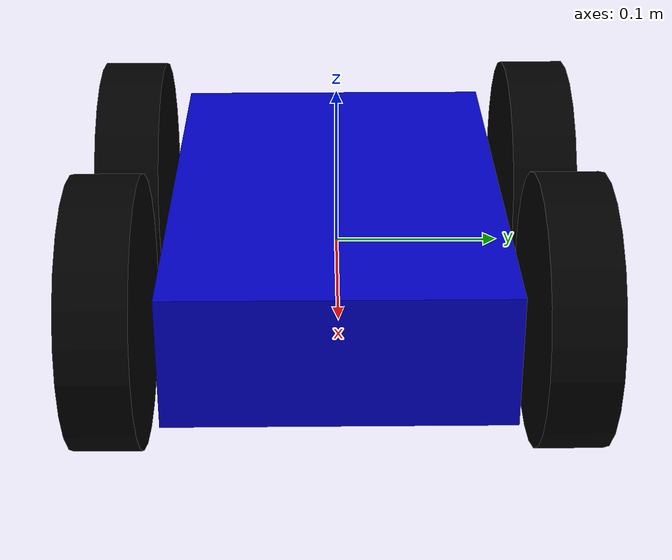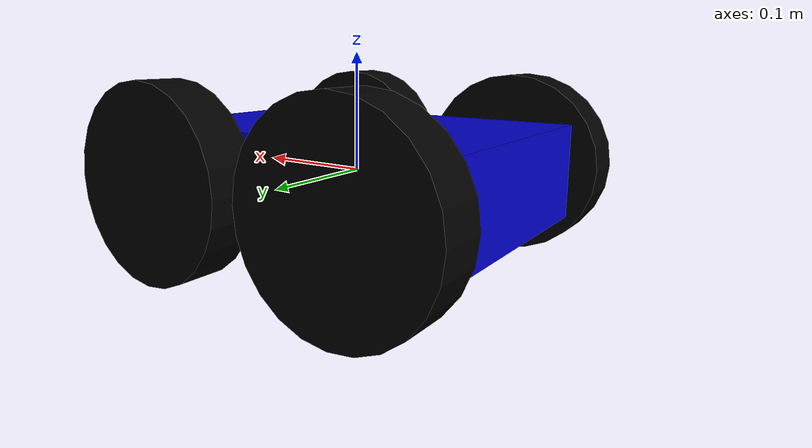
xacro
<?xml version="1.0"?>
<robot name="armbot" xmlns:xacro="http://ros.org/wiki/xacro">

  <xacro:property name="wheel_radius" value="0.08" />
  <xacro:property name="wheel_thickness" value="0.04" />
  <xacro:property name="chesis_length" value="0.3" />
  <xacro:property name="chesis_breadth" value="0.2" />
  <xacro:property name="chesis_height" value="0.08" />

  <material name="blue">
    <color rgba="0 0 0.8 1"/>
  </material>

  <material name="black">
    <color rgba="0 0 0 1"/>
  </material>

  <material name="white">
    <color rgba="1 1 1 1"/>
  </material>

  <xacro:macro name="box_inertia" params="mass x y z">
    <inertial>
      <mass value="${mass}" />
      <inertia ixx="${(1/12)*mass*(y*y+z*z)}" ixy="0.0" ixz="0.0" iyy="${(1/12)*mass*(x*x+z*z)}" iyz="0.0" izz="${(1/12)*mass*(y*y+x*x)}" />
    </inertial>
  </xacro:macro>

  <xacro:macro name="cyl_inertia" params="mass r h">
    <inertial>
      <mass value="${mass}" />
      <inertia ixx="${(1/12)*mass*(3*r*r+h*h)}" ixy="0.0" ixz="0.0" iyy="${(1/12)*mass*(3*r*r+h*h)}" iyz="0.0" izz="${(1/2)*mass*r*r}" />
    </inertial>
  </xacro:macro>

  <link name="base_link"></link>

  <link name="chesis">
    <visual>
      <geometry>
        <box size="${chesis_length} ${chesis_breadth} ${chesis_height}"/>
      </geometry>
      <material name="blue"/>
    </visual>
    <collision>
      <geometry>
        <box size="${chesis_length} ${chesis_breadth} ${chesis_height}"/>
      </geometry>
    </collision>
    <xacro:box_inertia mass="0.5" x="${chesis_length}" y="${chesis_breadth}" z="${chesis_height}"/>
  </link>

  <gazebo reference="chesis">
       <material>Gazebo/Blue</material>
    </gazebo>

  <joint name="fixed_joint" type="fixed">
      <parent link="base_link"/>
      <child link="chesis"/>
  </joint>

  <xacro:macro name="wheel" params="prefix suffix posx posy">
    <link name="${prefix}_${suffix}_wheel">
      <visual>
        <origin xyz="0 0 0" rpy="${pi/2} 0 0" />
        <geometry>
          <cylinder radius="${wheel_radius}" length="${wheel_thickness}"/>
        </geometry>
        <material name="black"/>
      </visual>
      <collision>
        <origin xyz="0 0 0" rpy="${pi/2} 0 0" />
        <geometry>
          <cylinder radius="${wheel_radius}" length="${wheel_thickness}"/>
        </geometry>
      </collision>
      <xacro:cyl_inertia mass="0.1" r="${wheel_radius}" h="${wheel_thickness}"/>
    </link>
    <joint name="${prefix}_${suffix}_wheel_joint" type="continuous">
      <axis xyz="0 1 0" rpy="0 0 0" />
      <parent link="chesis"/>
      <child link="${prefix}_${suffix}_wheel"/>
      <origin xyz="${(chesis_length*0.3)*posx} ${(chesis_breadth/2+wheel_thickness/2)*1.1*posy} 0" rpy="0 0 0"/>
      <dynamics damping="0"/>
    </joint>

    <gazebo reference="${prefix}_${suffix}_wheel">
       <material>Gazebo/DarkGray</material>
    </gazebo>

    <transmission name="${prefix}_${suffix}_wheel_trans">
      <type>transmission_interface/SimpleTransmission</type>
      <joint name="${prefix}_${suffix}_wheel_joint">
        <!-- Needed for ros deifferential drive controller -->
        <!-- Needed for gazebo differential drive controller -->
        <hardwareInterface>hardware_interface/EffortJointInterface</hardwareInterface>
      </joint>
      <actuator name="${prefix}_${suffix}_wheel_motor">
        <!-- Needed for ros deifferential drive controller -->
        <!-- Needed for gazebo differential drive controller -->
        <hardwareInterface>hardware_interface/EffortJointInterface</hardwareInterface>
        <mechanicalReduction>1</mechanicalReduction>
      </actuator>
    </transmission>
  </xacro:macro>

  <xacro:wheel prefix="front" suffix="left" posx="1" posy="1"/>
  <xacro:wheel prefix="front" suffix="right" posx="1" posy="-1"/>
  <xacro:wheel prefix="back" suffix="left" posx="-1" posy="1"/>
  <xacro:wheel prefix="back" suffix="right" posx="-1" posy="-1"/>

  <gazebo>
    <plugin name="mobile_base_controller" filename="libgazebo_ros_skid_steer_drive.so">
      <updateRate>100.0</updateRate>
      <robotNamespace>armbot</robotNamespace>
      <leftFrontJoint>front_left_wheel_joint</leftFrontJoint>
      <rightFrontJoint>front_right_wheel_joint</rightFrontJoint>
      <leftRearJoint>back_left_wheel_joint</leftRearJoint>
      <rightRearJoint>back_right_wheel_joint</rightRearJoint>
      <wheelSeparation>0.264</wheelSeparation>
      <wheelDiameter>${wheel_radius}*2</wheelDiameter>
      <robotBaseFrame>base_link</robotBaseFrame>
      <torque>20</torque>
      <commandTopic>mobile_base_controller/cmd_vel</commandTopic>
      <odometryTopic>mobile_base_controller/odom</odometryTopic>
      <odometryFrame>odom</odometryFrame>
      <covariance_x>100.0</covariance_x>
      <covariance_y>100.0</covariance_y>
      <covariance_yaw>100.0</covariance_yaw>
      <odometryRate>20.0</odometryRate>
      <broadcastTF>true</broadcastTF>
    </plugin>
  </gazebo>

  <!-- Gazebo plugin for ROS Control -->
  <gazebo>
    <plugin name="gazebo_ros_control" filename="libgazebo_ros_control.so">
      <robotNamespace>/armbot</robotNamespace>
      <legacyModeNS>true</legacyModeNS>
      <robotSimType>gazebo_ros_control/DefaultRobotHWSim</robotSimType>
    </plugin>
  </gazebo>

</robot>
